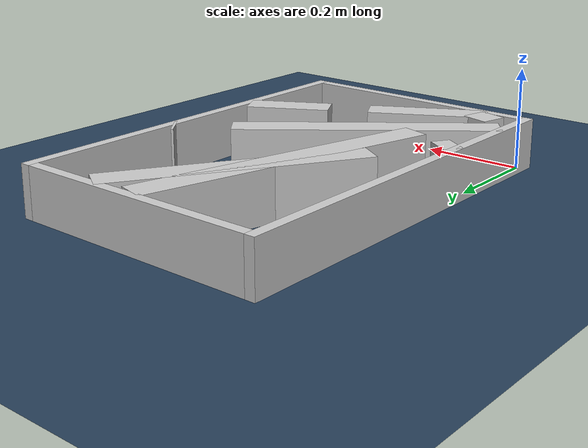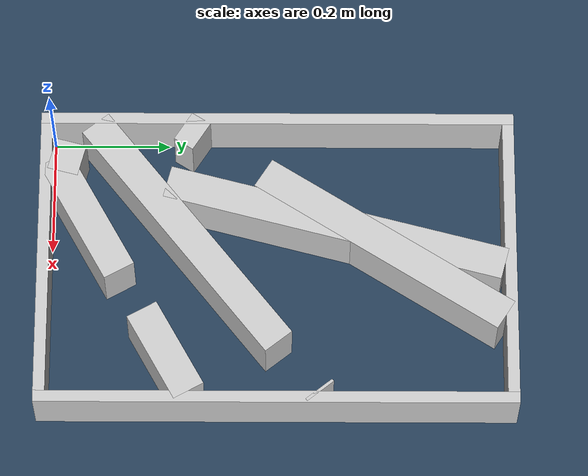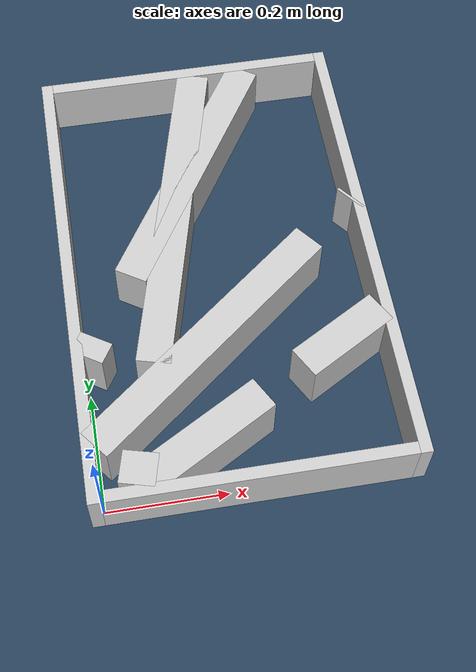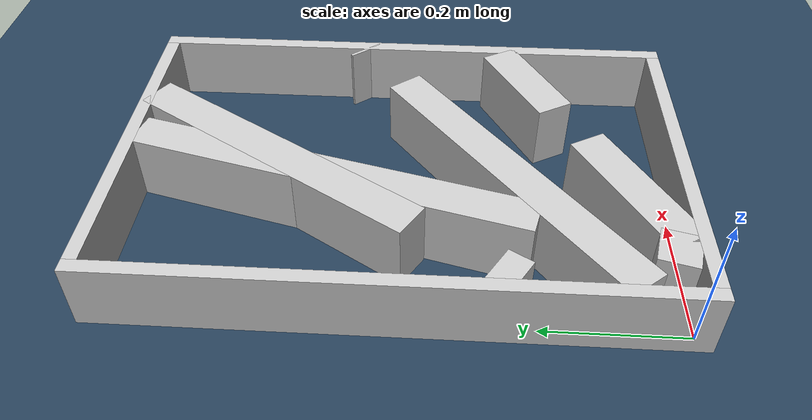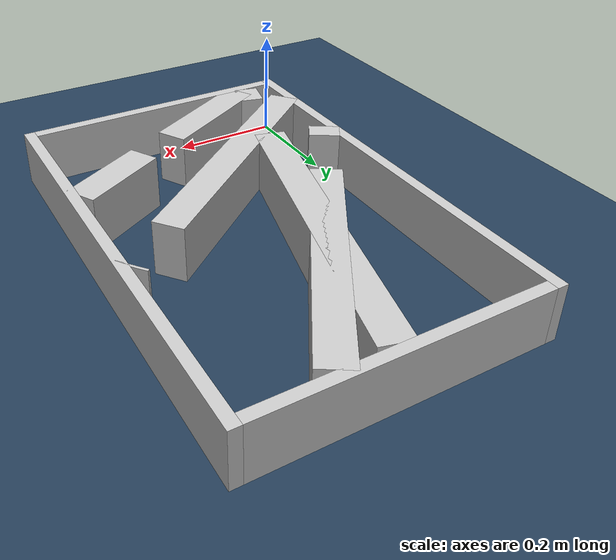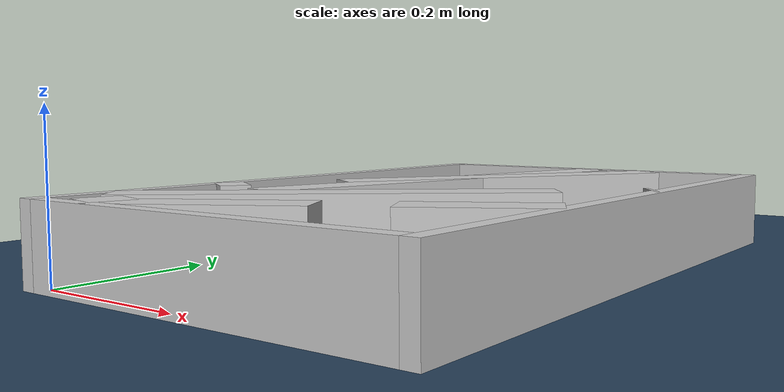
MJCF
<?xml version="1.0" ?>
<mujoco model="generated_real_template">
  <compiler angle="degree"/>
  <option timestep="0.002" integrator="implicitfast" iterations="100" cone="elliptic"/>
  <default>
    <geom density="1"/>
  </default>
  <asset>
    <texture builtin="gradient" height="3072" rgb1="0.3 0.5 0.7" rgb2="0 0 0" type="skybox" width="512"/>
    <texture builtin="checker" height="300" mark="edge" markrgb="0.8 0.8 0.8" name="groundplane" rgb1="0.2 0.3 0.4" rgb2="0.1 0.2 0.3" type="2d" width="300"/>
    <material name="groundplane" reflectance="0.2" texrepeat="5 5" texture="groundplane" texuniform="true"/>
  </asset>
  <worldbody>
    <light dir="0 0 -1" directional="true" pos="0 0 1.5"/>
    <geom name="floor" type="plane" condim="4" friction="0.5 0.005 0.001" material="groundplane" size="0 0 0.05"/>
    <body name="walls">
      <geom name="wall_boundary_left" type="box" condim="4" friction="1.0 0.005 0.0001" rgba="0.8 0.8 0.8 1" pos="-0.010000 0.387500 0.050000" euler="0 0 0.000000" size="0.010000 0.407500 0.050000"/>
      <geom name="wall_boundary_right" type="box" condim="4" friction="1.0 0.005 0.0001" rgba="0.8 0.8 0.8 1" pos="0.500000 0.387500 0.050000" euler="0 0 0.000000" size="0.010000 0.407500 0.050000"/>
      <geom name="wall_boundary_bottom" type="box" condim="4" friction="1.0 0.005 0.0001" rgba="0.8 0.8 0.8 1" pos="0.245000 -0.010000 0.050000" euler="0 0 0.000000" size="0.245000 0.010000 0.050000"/>
      <geom name="wall_boundary_top" type="box" condim="4" friction="1.0 0.005 0.0001" rgba="0.8 0.8 0.8 1" pos="0.245000 0.785000 0.050000" euler="0 0 0.000000" size="0.245000 0.010000 0.050000"/>
      <geom name="wall_inner_1_1" type="box" condim="4" friction="1.0 0.005 0.0001" rgba="0.8 0.8 0.8 1" pos="0.221971 0.569470 0.050000" euler="0 0 -122.323085" size="0.243218 0.028500 0.050000"/>
      <geom name="wall_inner_1_2" type="box" condim="4" friction="1.0 0.005 0.0001" rgba="0.8 0.8 0.8 1" pos="0.014187 0.241081 0.050000" euler="0 0 -122.323085" size="0.018894 0.028500 0.050000"/>
      <geom name="wall_inner_2_1" type="box" condim="4" friction="1.0 0.005 0.0001" rgba="0.8 0.8 0.8 1" pos="0.183584 0.487200 0.050000" euler="0 0 -104.624556" size="0.297436 0.028500 0.050000"/>
      <geom name="wall_inner_2_2" type="box" condim="4" friction="1.0 0.005 0.0001" rgba="0.8 0.8 0.8 1" pos="0.063251 0.026048 0.050000" euler="0 0 -104.624556" size="0.026920 0.028500 0.050000"/>
      <geom name="wall_inner_3_1" type="box" condim="4" friction="1.0 0.005 0.0001" rgba="0.8 0.8 0.8 1" pos="0.488061 0.460005 0.050000" euler="0 0 -141.621005" size="0.002474 0.028500 0.050000"/>
      <geom name="wall_inner_3_2" type="box" condim="4" friction="1.0 0.005 0.0001" rgba="0.8 0.8 0.8 1" pos="0.200561 0.232307 0.050000" euler="0 0 -141.621005" size="0.255844 0.028500 0.050000"/>
      <geom name="wall_inner_4_1" type="box" condim="4" friction="1.0 0.005 0.0001" rgba="0.8 0.8 0.8 1" pos="0.170302 0.062492 0.050000" euler="0 0 29.132680" size="0.118309 0.028500 0.050000"/>
      <geom name="wall_inner_4_2" type="box" condim="4" friction="1.0 0.005 0.0001" rgba="0.8 0.8 0.8 1" pos="0.417084 0.200034 0.050000" euler="0 0 29.132680" size="0.083476 0.028500 0.050000"/>
    </body>
  </worldbody>
</mujoco>
